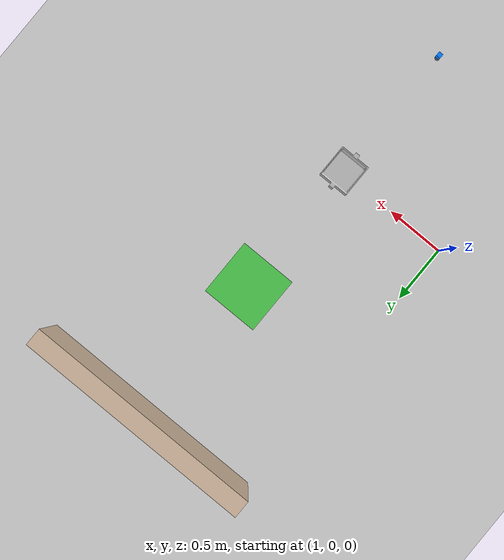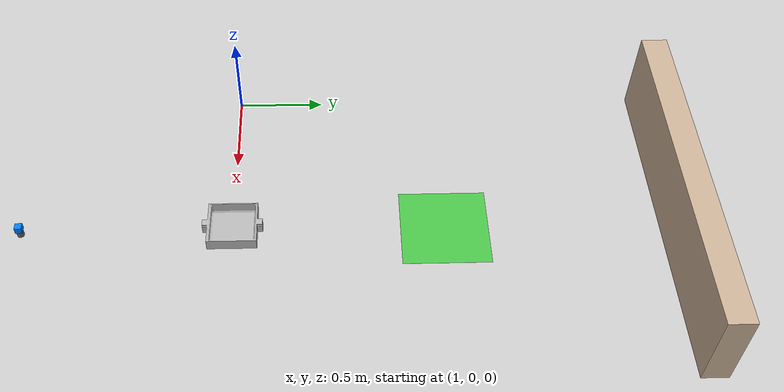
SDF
<?xml version="1.0"?>
<sdf version="1.9">
  <world name="multi_robot_scene">

    <!-- Required Ignition Fortress system plugins. -->
    <plugin filename="ignition-gazebo-physics-system"
            name="ignition::gazebo::systems::Physics"/>
    <plugin filename="ignition-gazebo-user-commands-system"
            name="ignition::gazebo::systems::UserCommands"/>
    <plugin filename="ignition-gazebo-scene-broadcaster-system"
            name="ignition::gazebo::systems::SceneBroadcaster"/>
    <plugin filename="ignition-gazebo-sensors-system"
            name="ignition::gazebo::systems::Sensors">
      <render_engine>ogre</render_engine>
    </plugin>

      <physics name="default_physics" type="ode">
        <max_step_size>0.005</max_step_size>
        <real_time_update_rate>200</real_time_update_rate>
        <gravity>0 0 -9.8</gravity>
        <ode>
          <solver>
            <type>quick</type>
            <iters>50</iters>
          </solver>
          <constraints>
            <cfm>1e-5</cfm>
            <erp>0.2</erp>
            <contact_max_correcting_vel>100</contact_max_correcting_vel>
            <contact_surface_layer>0.001</contact_surface_layer>
          </constraints>
        </ode>
      </physics>

    <!-- Ground plane -->
    <model name="ground_plane">
      <static>true</static>
      <link name="link">
        <collision name="collision">
          <geometry>
            <plane>
              <normal>0 0 1</normal>
              <size>100 100</size>
            </plane>
          </geometry>
        </collision>
        <visual name="visual">
          <geometry>
            <plane>
              <normal>0 0 1</normal>
              <size>100 100</size>
            </plane>
          </geometry>
          <material>
            <ambient>0.8 0.8 0.8 1</ambient>
            <diffuse>0.8 0.8 0.8 1</diffuse>
            <specular>0.8 0.8 0.8 1</specular>
          </material>
        </visual>
      </link>
    </model>

    <!-- Sun -->
    <light name="sun" type="directional">
      <cast_shadows>true</cast_shadows>
      <pose>0 0 10 0 0 0</pose>
      <diffuse>0.8 0.8 0.8 1</diffuse>
      <specular>0.2 0.2 0.2 1</specular>
      <attenuation>
        <range>1000</range>
        <constant>0.9</constant>
        <linear>0.01</linear>
        <quadratic>0.001</quadratic>
      </attenuation>
      <direction>-0.5 0.1 -0.9</direction>
    </light>

    <!-- Back wall -->
    <model name="wall">
      <static>true</static>
      <pose>2 2.5 0.25 0 0 0</pose>
      <link name="link">
        <collision name="collision">
          <geometry>
            <box>
              <size>2.0 0.15 0.5</size>
            </box>
          </geometry>
          <surface>
            <friction>
              <ode>
                <mu>1.0</mu>
                <mu2>1.0</mu2>
              </ode>
            </friction>
          </surface>
        </collision>
        <visual name="visual">
          <geometry>
            <box>
              <size>2.0 0.15 0.5</size>
            </box>
          </geometry>
          <material>
            <ambient>0.6 0.5 0.4 1</ambient>
            <diffuse>0.8 0.7 0.6 1</diffuse>
            <specular>0.3 0.3 0.3 1</specular>
          </material>
        </visual>
      </link>
    </model>

      <model name="cube_post">
        <static>true</static>
        <pose>2.0 -1.2 0.02 0 0 0</pose>
        <link name="link">
          <collision name="collision">
            <geometry><cylinder><radius>0.02</radius><length>0.04</length></cylinder></geometry>
          </collision>
          <visual name="visual">
            <geometry><cylinder><radius>0.02</radius><length>0.04</length></cylinder></geometry>
            <material>
              <ambient>0.3 0.3 0.3 1</ambient>
              <diffuse>0.4 0.4 0.4 1</diffuse>
            </material>
          </visual>
        </link>
      </model>
      <include>
       <uri>model://sim_gazebo_bringup/models/test_block</uri>
       <name>test_block</name>
       <!-- Cube centre at z=0.06 (post top 0.04 + half cube 0.02).
            REACH_DOWN puts pads at z~0.066 — inside the cube's
            vertical extent for a real side-grasp. -->
       <pose>2.0 -1.2 0.06 0 0 0</pose>
     </include>
    <include>
      <uri>model://sim_gazebo_bringup/models/sink</uri>
      <name>sink</name>
      <pose>2.0 0.0 0.035 1.57079632679 0 0</pose>
    </include>
    <include>
      <uri>model://sim_gazebo_bringup/models/landing_pad</uri>
      <name>landing_pad</name>
      <pose>2.0 1.2 0.001 0 0 0</pose>
    </include>

  </world>
</sdf>

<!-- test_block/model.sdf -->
<sdf version="1.6">
  <model name="test_block">
    <static>false</static>
    <pose>0.0 0.0 0.02 0 0 0</pose>

    <plugin filename="ignition-gazebo-pose-publisher-system"
            name="ignition::gazebo::systems::PosePublisher">
      <publish_link_pose>false</publish_link_pose>
      <publish_nested_model_pose>false</publish_nested_model_pose>
      <publish_model_pose>true</publish_model_pose>
      <use_pose_vector_msg>true</use_pose_vector_msg>
      <update_rate>20</update_rate>
    </plugin>

    <link name="base_link">
      <inertial>
        <!-- 5 g — light enough for the gripper to lift securely. -->
        <mass>0.020</mass>
        <inertia>
          <ixx>2.08e-7</ixx>
          <iyy>2.08e-7</iyy>
          <izz>2.08e-7</izz>
        </inertia>
      </inertial>
      <collision name="collision">
        <geometry>
          <box>
            <size>0.04 0.04 0.04</size>
          </box>
        </geometry>
        <surface>
          <friction>
            <ode>
              <mu>3.0</mu>
              <mu2>3.0</mu2>
            </ode>
          </friction>
          <contact>
            <ode>
              <kp>100000.0</kp>
              <kd>50.0</kd>
              <max_vel>1.0</max_vel>
              <min_depth>0.001</min_depth>
            </ode>
          </contact>
        </surface>
      </collision>
      <visual name="visual">
        <geometry>
          <box>
            <size>0.04 0.04 0.04</size>
          </box>
        </geometry>
        <material>
          <ambient>0.0 0.5 1.0 1.0</ambient>
          <diffuse>0.0 0.5 1.0 1.0</diffuse>
        </material>
      </visual>
    </link>
  </model>
</sdf>

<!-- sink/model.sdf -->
<sdf version="1.6">
  <model name="sink">
    <static>true</static>
    <pose>0 0 0.035 0 0 0</pose>

    <!-- Ground-truth pose publisher: relayed to /tf as odom->sink. -->
    <plugin filename="ignition-gazebo-pose-publisher-system"
            name="ignition::gazebo::systems::PosePublisher">
      <publish_link_pose>false</publish_link_pose>
      <publish_nested_model_pose>false</publish_nested_model_pose>
      <publish_model_pose>true</publish_model_pose>
      <use_pose_vector_msg>true</use_pose_vector_msg>
      <update_rate>20</update_rate>
    </plugin>

    <link name="base_link">
      <inertial>
        <!-- 2.0 kg: heavy enough to need two robots, light enough for the
             two X3Plus grippers to lift together. -->
        <mass>2.0</mass>
        <inertia>
          <ixx>0.008</ixx>
          <iyy>0.025</iyy>
          <izz>0.020</izz>
        </inertia>
      </inertial>

      <collision name="collision">
        <geometry>
          <mesh>
            <uri>model://sim_gazebo_bringup/meshes/sink/sink.obj</uri>
            <scale>1.0 1.0 1.0</scale>
          </mesh>
        </geometry>
        <surface>
          <friction>
            <ode>
              <mu>1.0</mu>
              <mu2>1.0</mu2>
            </ode>
          </friction>
          <contact>
            <ode>
              <kp>100000.0</kp>
              <kd>50.0</kd>
              <max_vel>1.0</max_vel>
              <min_depth>0.001</min_depth>
            </ode>
          </contact>
        </surface>
      </collision>

      <visual name="visual">
        <geometry>
          <mesh>
            <uri>model://sim_gazebo_bringup/meshes/sink/sink.obj</uri>
            <scale>1.0 1.0 1.0</scale>
          </mesh>
        </geometry>
      </visual>
    </link>
  </model>
</sdf>

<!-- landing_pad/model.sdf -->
<sdf version="1.6">
  <model name="landing_pad">
    <static>true</static>
    <pose>0 0 0.001 0 0 0</pose>

    <!-- Publish ground-truth pose on /model/landing_pad/pose so the
         vision autopilot can find the pad via TF. static_publisher is
         required because this model is static and never moves. -->
    <plugin filename="ignition-gazebo-pose-publisher-system"
            name="ignition::gazebo::systems::PosePublisher">
      <publish_link_pose>false</publish_link_pose>
      <publish_nested_model_pose>false</publish_nested_model_pose>
      <publish_model_pose>true</publish_model_pose>
      <use_pose_vector_msg>true</use_pose_vector_msg>
      <update_rate>5</update_rate>
      <static_publisher>true</static_publisher>
      <static_update_frequency>5</static_update_frequency>
    </plugin>

    <link name="base_link">
      <collision name="collision">
        <geometry>
          <box>
            <size>0.5 0.5 0.002</size>
          </box>
        </geometry>
        <surface>
          <friction>
            <ode>
              <mu>1.0</mu>
              <mu2>1.0</mu2>
            </ode>
          </friction>
        </surface>
      </collision>
      <visual name="visual">
        <geometry>
          <box>
            <size>0.5 0.5 0.002</size>
          </box>
        </geometry>
        <material>
          <ambient>0.0 0.8 0.0 1.0</ambient>
          <diffuse>0.0 0.8 0.0 0.6</diffuse>
        </material>
      </visual>
    </link>
  </model>
</sdf>
